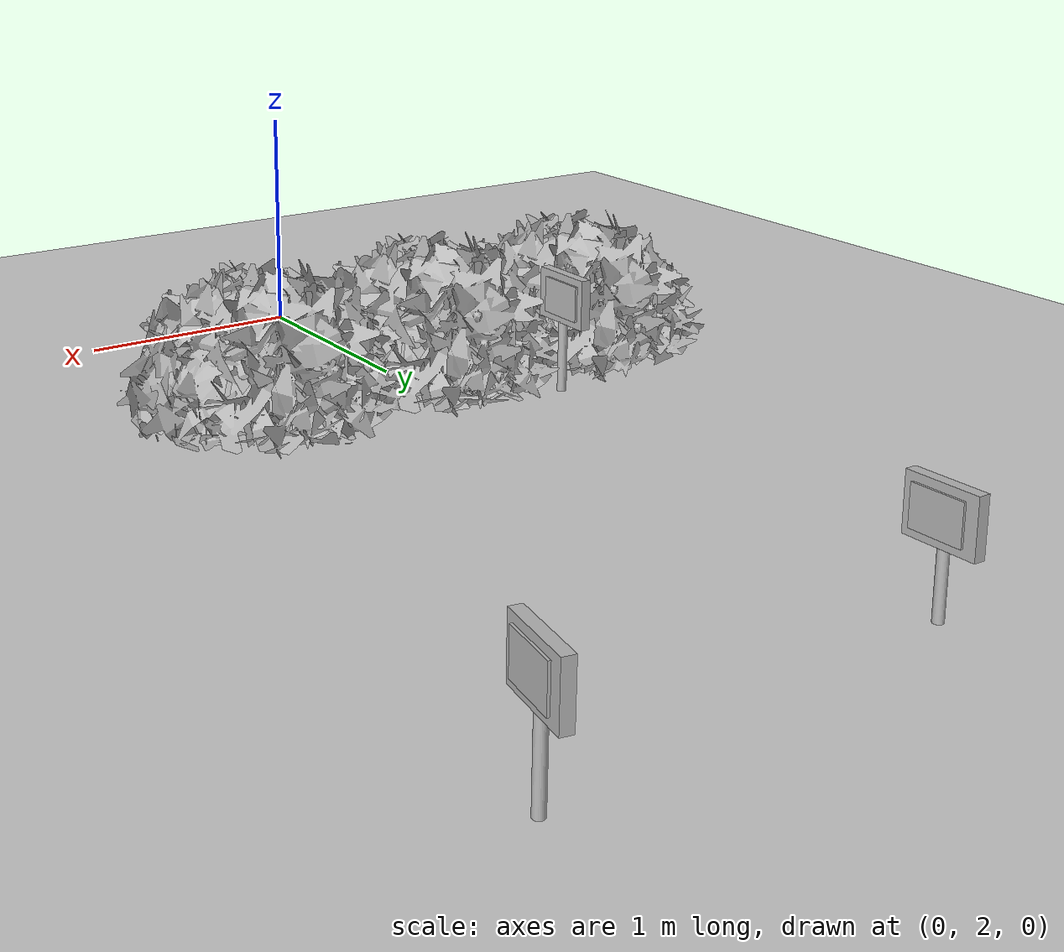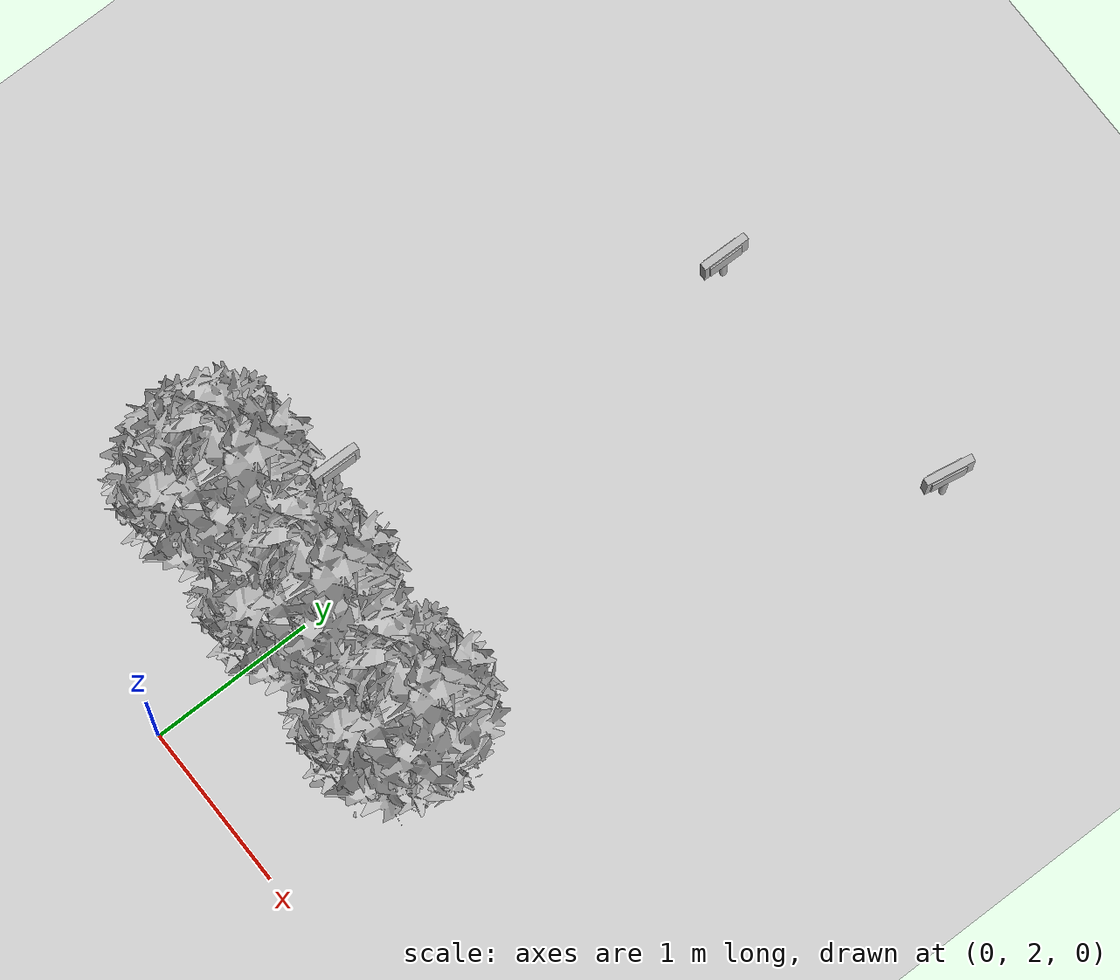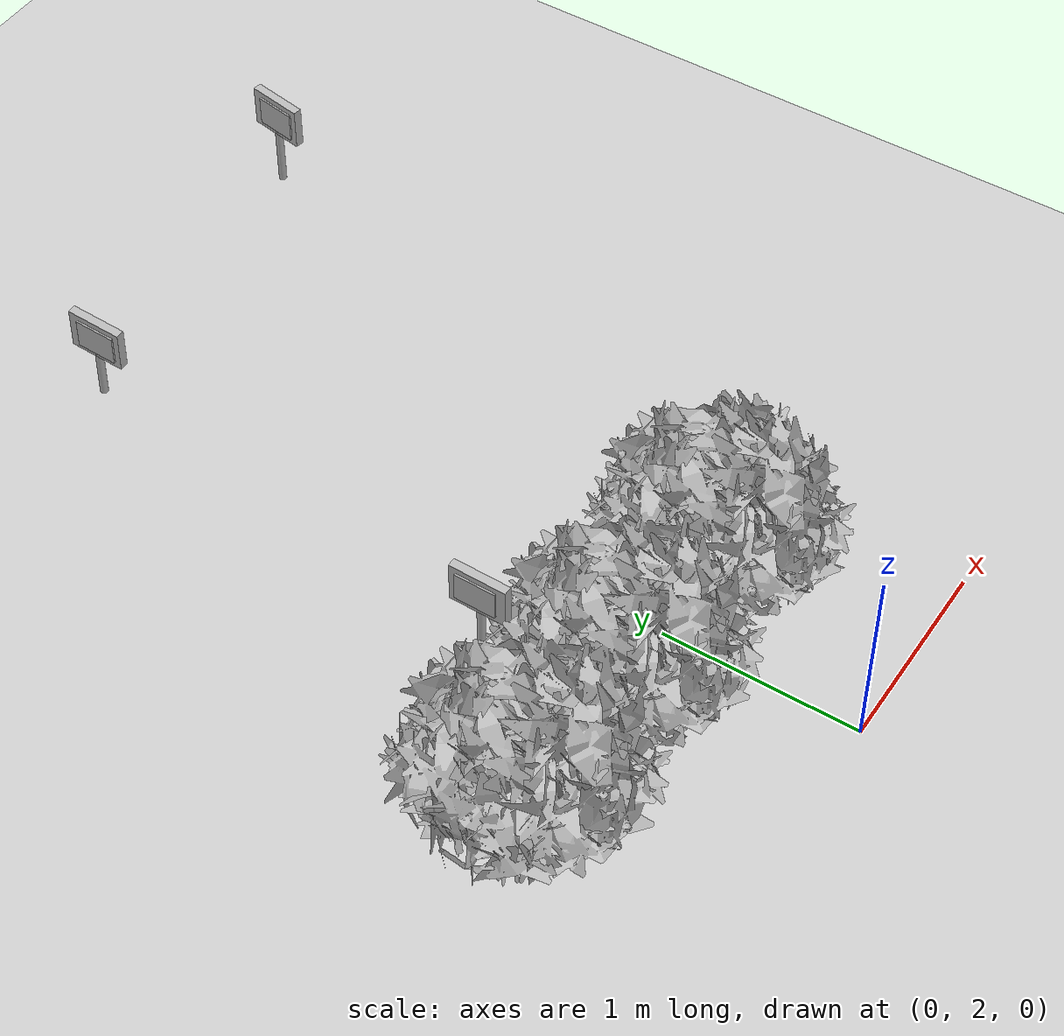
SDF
<sdf version="1.7">
 <world name="default">
  <model name="ground_plane">
   <static>1</static>
   <link name="link">
    <collision name="collision">
     <geometry><plane><normal>0 0 1</normal><size>100 100</size></plane></geometry>
     <surface>
      <contact><collide_bitmask>65535</collide_bitmask></contact>
      <friction><ode><mu>100</mu><mu2>50</mu2></ode></friction>
     </surface>
    </collision>
    <visual name="visual">
     <cast_shadows>0</cast_shadows>
     <geometry><plane><normal>0 0 1</normal><size>100 100</size></plane></geometry>
     <material>
      <script><uri>file://media/materials/scripts/gazebo.material</uri><name>Gazebo/Grey</name></script>
     </material>
    </visual>
   </link>
  </model>
  <model name="abbfre_5">
   <link name="link_0">
    <inertial>
     <mass>1</mass>
     <inertia>
      <ixx>0.166667</ixx>
      <ixy>0</ixy>
      <ixz>0</ixz>
      <iyy>0.166667</iyy>
      <iyz>0</iyz>
      <izz>0.166667</izz>
     </inertia>
    </inertial>
    <pose>0 0 -0 1.60917 -0 0</pose>
    <visual name="visual">
     <geometry><mesh><uri>model://abbfre/meshes/arbufres.obj</uri><scale>1 1 1</scale></mesh></geometry>
    </visual>
    <collision name="collision">
     <geometry><mesh><uri>model://abbfre/meshes/arbufres.obj</uri><scale>1 1 1</scale></mesh></geometry>
     <surface>
      <friction>
       <ode><mu>1</mu><mu2>1</mu2><fdir1>0 0 0</fdir1><slip1>0</slip1><slip2>0</slip2></ode>
       <torsional>
        <coefficient>1</coefficient>
        <patch_radius>0</patch_radius>
        <surface_radius>0</surface_radius>
        <use_patch_radius>1</use_patch_radius>
        <ode><slip>0</slip></ode>
       </torsional>
      </friction>
      <bounce><restitution_coefficient>0</restitution_coefficient><threshold>1e+06</threshold></bounce>
      <contact>
       <collide_without_contact>0</collide_without_contact>
       <collide_without_contact_bitmask>1</collide_without_contact_bitmask>
       <collide_bitmask>1</collide_bitmask>
       <ode>
        <soft_cfm>0</soft_cfm>
        <soft_erp>0.2</soft_erp>
        <kp>1e+13</kp>
        <kd>1</kd>
        <max_vel>0.01</max_vel>
        <min_depth>0</min_depth>
       </ode>
       <bullet>
        <split_impulse>1</split_impulse>
        <split_impulse_penetration_threshold>-0.01</split_impulse_penetration_threshold>
        <soft_cfm>0</soft_cfm>
        <soft_erp>0.2</soft_erp>
        <kp>1e+13</kp>
        <kd>1</kd>
       </bullet>
      </contact>
     </surface>
    </collision>
   </link>
   <static>1</static>
   <pose>-0.145619 3.21888 0 0 -0 0</pose>
  </model>
  <model name="letrero_riego_II_6">
   <link name="link_0">
    <inertial>
     <mass>0.0543151</mass>
     <inertia>
      <ixx>4.90351e-06</ixx>
      <ixy>0</ixy>
      <ixz>0</ixz>
      <iyy>4.90351e-06</iyy>
      <iyz>0</iyz>
      <izz>1.12837e-07</izz>
     </inertia>
    </inertial>
    <pose>0.002515 0.005109 0.153562 0 -0 0</pose>
    <visual name="visual">
     <geometry><cylinder><radius>0.0203836</radius><length>0.327243</length></cylinder></geometry>
     <material>
      <lighting>1</lighting>
      <script>
       <uri>model://letrero_riego_II/madera/scripts</uri>
       <uri>model://letrero_riego_II/madera/textures</uri>
       <name>textur/madera</name>
      </script>
      <shader type="pixel"/>
      <emissive>0 0 0 1</emissive>
     </material>
    </visual>
    <collision name="collision">
     <geometry><cylinder><radius>0.020384</radius><length>0.327243</length></cylinder></geometry>
     <surface>
      <friction>
       <ode><mu>1</mu><mu2>1</mu2><fdir1>0 0 0</fdir1><slip1>0</slip1><slip2>0</slip2></ode>
       <torsional>
        <coefficient>1</coefficient>
        <patch_radius>0</patch_radius>
        <surface_radius>0</surface_radius>
        <use_patch_radius>1</use_patch_radius>
        <ode><slip>0</slip></ode>
       </torsional>
      </friction>
      <bounce><restitution_coefficient>0</restitution_coefficient><threshold>1e+06</threshold></bounce>
      <contact>
       <collide_without_contact>0</collide_without_contact>
       <collide_without_contact_bitmask>1</collide_without_contact_bitmask>
       <collide_bitmask>1</collide_bitmask>
       <ode>
        <soft_cfm>0</soft_cfm>
        <soft_erp>0.2</soft_erp>
        <kp>1e+13</kp>
        <kd>1</kd>
        <max_vel>0.01</max_vel>
        <min_depth>0</min_depth>
       </ode>
       <bullet>
        <split_impulse>1</split_impulse>
        <split_impulse_penetration_threshold>-0.01</split_impulse_penetration_threshold>
        <soft_cfm>0</soft_cfm>
        <soft_erp>0.2</soft_erp>
        <kp>1e+13</kp>
        <kd>1</kd>
       </bullet>
      </contact>
     </surface>
    </collision>
   </link>
   <link name="link_1">
    <inertial>
     <mass>0.00299633</mass>
     <inertia>
      <ixx>1.27855e-05</ixx>
      <ixy>0</ixy>
      <ixz>0</ixz>
      <iyy>3.42923e-05</iyy>
      <iyz>0</iyz>
      <izz>2.25402e-05</izz>
     </inertia>
    </inertial>
    <pose>-0.001542 0.002452 0.422031 0 -0 0</pose>
    <visual name="visual">
     <geometry><box><size>0.296988 0.04549 0.221665</size></box></geometry>
     <material>
      <lighting>1</lighting>
      <script>
       <uri>model://letrero_riego_II/madera/scripts</uri>
       <uri>model://letrero_riego_II/madera/textures</uri>
       <name>textur/madera</name>
      </script>
      <shader type="pixel"/>
      <emissive>0 0 0 1</emissive>
     </material>
    </visual>
    <collision name="collision">
     <geometry><box><size>0.296988 0.04549 0.221665</size></box></geometry>
     <surface>
      <friction>
       <ode><mu>1</mu><mu2>1</mu2><fdir1>0 0 0</fdir1><slip1>0</slip1><slip2>0</slip2></ode>
       <torsional>
        <coefficient>1</coefficient>
        <patch_radius>0</patch_radius>
        <surface_radius>0</surface_radius>
        <use_patch_radius>1</use_patch_radius>
        <ode><slip>0</slip></ode>
       </torsional>
      </friction>
      <bounce><restitution_coefficient>0</restitution_coefficient><threshold>1e+06</threshold></bounce>
      <contact>
       <collide_without_contact>0</collide_without_contact>
       <collide_without_contact_bitmask>1</collide_without_contact_bitmask>
       <collide_bitmask>1</collide_bitmask>
       <ode>
        <soft_cfm>0</soft_cfm>
        <soft_erp>0.2</soft_erp>
        <kp>1e+13</kp>
        <kd>1</kd>
        <max_vel>0.01</max_vel>
        <min_depth>0</min_depth>
       </ode>
       <bullet>
        <split_impulse>1</split_impulse>
        <split_impulse_penetration_threshold>-0.01</split_impulse_penetration_threshold>
        <soft_cfm>0</soft_cfm>
        <soft_erp>0.2</soft_erp>
        <kp>1e+13</kp>
        <kd>1</kd>
       </bullet>
      </contact>
     </surface>
    </collision>
   </link>
   <link name="link_2">
    <inertial>
     <mass>0.00173577</mass>
     <inertia>
      <ixx>4.23206e-06</ixx>
      <ixy>0</ixy>
      <ixz>0</ixz>
      <iyy>1.03921e-05</iyy>
      <iyz>0</iyz>
      <izz>7.37287e-06</izz>
     </inertia>
    </inertial>
    <pose>-0.010225 0.002657 0.421501 0 -0 0</pose>
    <visual name="visual">
     <geometry><box><size>0.216284 0.064749 0.15832</size></box></geometry>
     <material>
      <lighting>1</lighting>
      <script>
       <uri>model://letrero_riego_II/materials/scripts</uri>
       <uri>model://letrero_riego_II/materials/textures</uri>
       <name>textur/sisrie</name>
      </script>
      <shader type="pixel"/>
      <emissive>0 0 0 1</emissive>
     </material>
    </visual>
    <collision name="collision">
     <geometry><box><size>0.216284 0.064749 0.15832</size></box></geometry>
     <surface>
      <friction>
       <ode><mu>1</mu><mu2>1</mu2><fdir1>0 0 0</fdir1><slip1>0</slip1><slip2>0</slip2></ode>
       <torsional>
        <coefficient>1</coefficient>
        <patch_radius>0</patch_radius>
        <surface_radius>0</surface_radius>
        <use_patch_radius>1</use_patch_radius>
        <ode><slip>0</slip></ode>
       </torsional>
      </friction>
      <bounce><restitution_coefficient>0</restitution_coefficient><threshold>1e+06</threshold></bounce>
      <contact>
       <collide_without_contact>0</collide_without_contact>
       <collide_without_contact_bitmask>1</collide_without_contact_bitmask>
       <collide_bitmask>1</collide_bitmask>
       <ode>
        <soft_cfm>0</soft_cfm>
        <soft_erp>0.2</soft_erp>
        <kp>1e+13</kp>
        <kd>1</kd>
        <max_vel>0.01</max_vel>
        <min_depth>0</min_depth>
       </ode>
       <bullet>
        <split_impulse>1</split_impulse>
        <split_impulse_penetration_threshold>-0.01</split_impulse_penetration_threshold>
        <soft_cfm>0</soft_cfm>
        <soft_erp>0.2</soft_erp>
        <kp>1e+13</kp>
        <kd>1</kd>
       </bullet>
      </contact>
     </surface>
    </collision>
   </link>
   <joint name="link_0_JOINT_1" type="fixed">
    <parent>link_0</parent>
    <child>link_1</child>
    <physics>
     <ode><limit><cfm>0</cfm><erp>0.2</erp></limit><suspension><cfm>0</cfm><erp>0.2</erp></suspension></ode>
    </physics>
   </joint>
   <joint name="link_0_JOINT_2" type="fixed">
    <parent>link_0</parent>
    <child>link_2</child>
    <physics>
     <ode><limit><cfm>0</cfm><erp>0.2</erp></limit><suspension><cfm>0</cfm><erp>0.2</erp></suspension></ode>
    </physics>
   </joint>
   <static>1</static>
   <pose>1.546 6.24181 0 0 -0 1.39874</pose>
  </model>
  <model name="letrero_chocho_5">
   <link name="link_0">
    <inertial>
     <mass>0.0543151</mass>
     <inertia>
      <ixx>4.90351e-06</ixx>
      <ixy>0</ixy>
      <ixz>0</ixz>
      <iyy>4.90351e-06</iyy>
      <iyz>0</iyz>
      <izz>1.12837e-07</izz>
     </inertia>
    </inertial>
    <pose>0.002515 0.005109 0.153562 0 -0 0</pose>
    <visual name="visual">
     <geometry><cylinder><radius>0.0203836</radius><length>0.327243</length></cylinder></geometry>
     <material>
      <lighting>1</lighting>
      <script>
       <uri>model://letrero_chocho/madera/scripts</uri>
       <uri>model://letrero_chocho/madera/textures</uri>
       <name>textur/madera</name>
      </script>
      <shader type="pixel"/>
      <emissive>0 0 0 1</emissive>
     </material>
    </visual>
    <collision name="collision">
     <geometry><cylinder><radius>0.020384</radius><length>0.327243</length></cylinder></geometry>
     <surface>
      <friction>
       <ode><mu>1</mu><mu2>1</mu2><fdir1>0 0 0</fdir1><slip1>0</slip1><slip2>0</slip2></ode>
       <torsional>
        <coefficient>1</coefficient>
        <patch_radius>0</patch_radius>
        <surface_radius>0</surface_radius>
        <use_patch_radius>1</use_patch_radius>
        <ode><slip>0</slip></ode>
       </torsional>
      </friction>
      <bounce><restitution_coefficient>0</restitution_coefficient><threshold>1e+06</threshold></bounce>
      <contact>
       <collide_without_contact>0</collide_without_contact>
       <collide_without_contact_bitmask>1</collide_without_contact_bitmask>
       <collide_bitmask>1</collide_bitmask>
       <ode>
        <soft_cfm>0</soft_cfm>
        <soft_erp>0.2</soft_erp>
        <kp>1e+13</kp>
        <kd>1</kd>
        <max_vel>0.01</max_vel>
        <min_depth>0</min_depth>
       </ode>
       <bullet>
        <split_impulse>1</split_impulse>
        <split_impulse_penetration_threshold>-0.01</split_impulse_penetration_threshold>
        <soft_cfm>0</soft_cfm>
        <soft_erp>0.2</soft_erp>
        <kp>1e+13</kp>
        <kd>1</kd>
       </bullet>
      </contact>
     </surface>
    </collision>
   </link>
   <link name="link_1">
    <inertial>
     <mass>0.00299633</mass>
     <inertia>
      <ixx>1.27855e-05</ixx>
      <ixy>0</ixy>
      <ixz>0</ixz>
      <iyy>3.42923e-05</iyy>
      <iyz>0</iyz>
      <izz>2.25402e-05</izz>
     </inertia>
    </inertial>
    <pose>-0.001542 0.002452 0.422031 0 -0 0</pose>
    <visual name="visual">
     <geometry><box><size>0.296988 0.04549 0.221665</size></box></geometry>
     <material>
      <lighting>1</lighting>
      <script>
       <uri>model://letrero_chocho/madera/scripts</uri>
       <uri>model://letrero_chocho/madera/textures</uri>
       <name>textur/madera</name>
      </script>
      <shader type="pixel"/>
      <emissive>0 0 0 1</emissive>
     </material>
    </visual>
    <collision name="collision">
     <geometry><box><size>0.296988 0.04549 0.221665</size></box></geometry>
     <surface>
      <friction>
       <ode><mu>1</mu><mu2>1</mu2><fdir1>0 0 0</fdir1><slip1>0</slip1><slip2>0</slip2></ode>
       <torsional>
        <coefficient>1</coefficient>
        <patch_radius>0</patch_radius>
        <surface_radius>0</surface_radius>
        <use_patch_radius>1</use_patch_radius>
        <ode><slip>0</slip></ode>
       </torsional>
      </friction>
      <bounce><restitution_coefficient>0</restitution_coefficient><threshold>1e+06</threshold></bounce>
      <contact>
       <collide_without_contact>0</collide_without_contact>
       <collide_without_contact_bitmask>1</collide_without_contact_bitmask>
       <collide_bitmask>1</collide_bitmask>
       <ode>
        <soft_cfm>0</soft_cfm>
        <soft_erp>0.2</soft_erp>
        <kp>1e+13</kp>
        <kd>1</kd>
        <max_vel>0.01</max_vel>
        <min_depth>0</min_depth>
       </ode>
       <bullet>
        <split_impulse>1</split_impulse>
        <split_impulse_penetration_threshold>-0.01</split_impulse_penetration_threshold>
        <soft_cfm>0</soft_cfm>
        <soft_erp>0.2</soft_erp>
        <kp>1e+13</kp>
        <kd>1</kd>
       </bullet>
      </contact>
     </surface>
    </collision>
   </link>
   <link name="link_2">
    <inertial>
     <mass>0.00173577</mass>
     <inertia>
      <ixx>4.23206e-06</ixx>
      <ixy>0</ixy>
      <ixz>0</ixz>
      <iyy>1.03921e-05</iyy>
      <iyz>0</iyz>
      <izz>7.37287e-06</izz>
     </inertia>
    </inertial>
    <pose>-0.010225 0.002657 0.421501 0 -0 0</pose>
    <visual name="visual">
     <geometry><box><size>0.216284 0.064749 0.15832</size></box></geometry>
     <material>
      <lighting>1</lighting>
      <script>
       <uri>model://letrero_chocho/materials/scripts</uri>
       <uri>model://letrero_chocho/materials/textures</uri>
       <name>textur/cho</name>
      </script>
      <shader type="pixel"/>
      <emissive>0 0 0 1</emissive>
     </material>
    </visual>
    <collision name="collision">
     <geometry><box><size>0.216284 0.064749 0.15832</size></box></geometry>
     <surface>
      <friction>
       <ode><mu>1</mu><mu2>1</mu2><fdir1>0 0 0</fdir1><slip1>0</slip1><slip2>0</slip2></ode>
       <torsional>
        <coefficient>1</coefficient>
        <patch_radius>0</patch_radius>
        <surface_radius>0</surface_radius>
        <use_patch_radius>1</use_patch_radius>
        <ode><slip>0</slip></ode>
       </torsional>
      </friction>
      <bounce><restitution_coefficient>0</restitution_coefficient><threshold>1e+06</threshold></bounce>
      <contact>
       <collide_without_contact>0</collide_without_contact>
       <collide_without_contact_bitmask>1</collide_without_contact_bitmask>
       <collide_bitmask>1</collide_bitmask>
       <ode>
        <soft_cfm>0</soft_cfm>
        <soft_erp>0.2</soft_erp>
        <kp>1e+13</kp>
        <kd>1</kd>
        <max_vel>0.01</max_vel>
        <min_depth>0</min_depth>
       </ode>
       <bullet>
        <split_impulse>1</split_impulse>
        <split_impulse_penetration_threshold>-0.01</split_impulse_penetration_threshold>
        <soft_cfm>0</soft_cfm>
        <soft_erp>0.2</soft_erp>
        <kp>1e+13</kp>
        <kd>1</kd>
       </bullet>
      </contact>
     </surface>
    </collision>
   </link>
   <joint name="link_0_JOINT_1" type="fixed">
    <parent>link_0</parent>
    <child>link_1</child>
    <physics>
     <ode><limit><cfm>0</cfm><erp>0.2</erp></limit><suspension><cfm>0</cfm><erp>0.2</erp></suspension></ode>
    </physics>
   </joint>
   <joint name="link_0_JOINT_2" type="fixed">
    <parent>link_0</parent>
    <child>link_2</child>
    <physics>
     <ode><limit><cfm>0</cfm><erp>0.2</erp></limit><suspension><cfm>0</cfm><erp>0.2</erp></suspension></ode>
    </physics>
   </joint>
   <static>1</static>
   <pose>-0.173827 6.0597 -0.055651 0.000459 -0.025716 1.55293</pose>
  </model>
  <model name="letrero_riego_3">
   <link name="link_0">
    <inertial>
     <mass>0.0543151</mass>
     <inertia>
      <ixx>4.90351e-06</ixx>
      <ixy>0</ixy>
      <ixz>0</ixz>
      <iyy>4.90351e-06</iyy>
      <iyz>0</iyz>
      <izz>1.12837e-07</izz>
     </inertia>
    </inertial>
    <pose>0.002515 0.005109 0.153562 0 -0 0</pose>
    <visual name="visual">
     <geometry><cylinder><radius>0.0203836</radius><length>0.327243</length></cylinder></geometry>
     <material>
      <lighting>1</lighting>
      <script>
       <uri>model://letrero_riego/madera/scripts</uri>
       <uri>model://letrero_riego/madera/textures</uri>
       <name>textur/madera</name>
      </script>
      <shader type="pixel"/>
      <emissive>0 0 0 1</emissive>
     </material>
    </visual>
    <collision name="collision">
     <geometry><cylinder><radius>0.020384</radius><length>0.327243</length></cylinder></geometry>
     <surface>
      <friction>
       <ode><mu>1</mu><mu2>1</mu2><fdir1>0 0 0</fdir1><slip1>0</slip1><slip2>0</slip2></ode>
       <torsional>
        <coefficient>1</coefficient>
        <patch_radius>0</patch_radius>
        <surface_radius>0</surface_radius>
        <use_patch_radius>1</use_patch_radius>
        <ode><slip>0</slip></ode>
       </torsional>
      </friction>
      <bounce><restitution_coefficient>0</restitution_coefficient><threshold>1e+06</threshold></bounce>
      <contact>
       <collide_without_contact>0</collide_without_contact>
       <collide_without_contact_bitmask>1</collide_without_contact_bitmask>
       <collide_bitmask>1</collide_bitmask>
       <ode>
        <soft_cfm>0</soft_cfm>
        <soft_erp>0.2</soft_erp>
        <kp>1e+13</kp>
        <kd>1</kd>
        <max_vel>0.01</max_vel>
        <min_depth>0</min_depth>
       </ode>
       <bullet>
        <split_impulse>1</split_impulse>
        <split_impulse_penetration_threshold>-0.01</split_impulse_penetration_threshold>
        <soft_cfm>0</soft_cfm>
        <soft_erp>0.2</soft_erp>
        <kp>1e+13</kp>
        <kd>1</kd>
       </bullet>
      </contact>
     </surface>
    </collision>
   </link>
   <link name="link_1">
    <inertial>
     <mass>0.00299633</mass>
     <inertia>
      <ixx>1.27855e-05</ixx>
      <ixy>0</ixy>
      <ixz>0</ixz>
      <iyy>3.42923e-05</iyy>
      <iyz>0</iyz>
      <izz>2.25402e-05</izz>
     </inertia>
    </inertial>
    <pose>-0.001542 0.002452 0.422031 0 -0 0</pose>
    <visual name="visual">
     <geometry><box><size>0.296988 0.04549 0.221665</size></box></geometry>
     <material>
      <lighting>1</lighting>
      <script>
       <uri>model://letrero_riego/madera/scripts</uri>
       <uri>model://letrero_riego/madera/textures</uri>
       <name>textur/madera</name>
      </script>
      <shader type="pixel"/>
      <emissive>0 0 0 1</emissive>
     </material>
    </visual>
    <collision name="collision">
     <geometry><box><size>0.296988 0.04549 0.221665</size></box></geometry>
     <surface>
      <friction>
       <ode><mu>1</mu><mu2>1</mu2><fdir1>0 0 0</fdir1><slip1>0</slip1><slip2>0</slip2></ode>
       <torsional>
        <coefficient>1</coefficient>
        <patch_radius>0</patch_radius>
        <surface_radius>0</surface_radius>
        <use_patch_radius>1</use_patch_radius>
        <ode><slip>0</slip></ode>
       </torsional>
      </friction>
      <bounce><restitution_coefficient>0</restitution_coefficient><threshold>1e+06</threshold></bounce>
      <contact>
       <collide_without_contact>0</collide_without_contact>
       <collide_without_contact_bitmask>1</collide_without_contact_bitmask>
       <collide_bitmask>1</collide_bitmask>
       <ode>
        <soft_cfm>0</soft_cfm>
        <soft_erp>0.2</soft_erp>
        <kp>1e+13</kp>
        <kd>1</kd>
        <max_vel>0.01</max_vel>
        <min_depth>0</min_depth>
       </ode>
       <bullet>
        <split_impulse>1</split_impulse>
        <split_impulse_penetration_threshold>-0.01</split_impulse_penetration_threshold>
        <soft_cfm>0</soft_cfm>
        <soft_erp>0.2</soft_erp>
        <kp>1e+13</kp>
        <kd>1</kd>
       </bullet>
      </contact>
     </surface>
    </collision>
   </link>
   <link name="link_2">
    <inertial>
     <mass>0.00173577</mass>
     <inertia>
      <ixx>4.23206e-06</ixx>
      <ixy>0</ixy>
      <ixz>0</ixz>
      <iyy>1.03921e-05</iyy>
      <iyz>0</iyz>
      <izz>7.37287e-06</izz>
     </inertia>
    </inertial>
    <pose>-0.010225 0.002657 0.421501 0 -0 0</pose>
    <visual name="visual">
     <geometry><box><size>0.216284 0.064749 0.15832</size></box></geometry>
     <material>
      <lighting>1</lighting>
      <script>
       <uri>model://letrero_riego/materials/scripts</uri>
       <uri>model://letrero_riego/materials/textures</uri>
       <name>textur/riego</name>
      </script>
      <shader type="pixel"/>
      <emissive>0 0 0 1</emissive>
     </material>
    </visual>
    <collision name="collision">
     <geometry><box><size>0.216284 0.064749 0.15832</size></box></geometry>
     <surface>
      <friction>
       <ode><mu>1</mu><mu2>1</mu2><fdir1>0 0 0</fdir1><slip1>0</slip1><slip2>0</slip2></ode>
       <torsional>
        <coefficient>1</coefficient>
        <patch_radius>0</patch_radius>
        <surface_radius>0</surface_radius>
        <use_patch_radius>1</use_patch_radius>
        <ode><slip>0</slip></ode>
       </torsional>
      </friction>
      <bounce><restitution_coefficient>0</restitution_coefficient><threshold>1e+06</threshold></bounce>
      <contact>
       <collide_without_contact>0</collide_without_contact>
       <collide_without_contact_bitmask>1</collide_without_contact_bitmask>
       <collide_bitmask>1</collide_bitmask>
       <ode>
        <soft_cfm>0</soft_cfm>
        <soft_erp>0.2</soft_erp>
        <kp>1e+13</kp>
        <kd>1</kd>
        <max_vel>0.01</max_vel>
        <min_depth>0</min_depth>
       </ode>
       <bullet>
        <split_impulse>1</split_impulse>
        <split_impulse_penetration_threshold>-0.01</split_impulse_penetration_threshold>
        <soft_cfm>0</soft_cfm>
        <soft_erp>0.2</soft_erp>
        <kp>1e+13</kp>
        <kd>1</kd>
       </bullet>
      </contact>
     </surface>
    </collision>
   </link>
   <joint name="link_0_JOINT_1" type="fixed">
    <parent>link_0</parent>
    <child>link_1</child>
    <physics>
     <ode><limit><cfm>0</cfm><erp>0.2</erp></limit><suspension><cfm>0</cfm><erp>0.2</erp></suspension></ode>
    </physics>
   </joint>
   <joint name="link_0_JOINT_2" type="fixed">
    <parent>link_0</parent>
    <child>link_2</child>
    <physics>
     <ode><limit><cfm>0</cfm><erp>0.2</erp></limit><suspension><cfm>0</cfm><erp>0.2</erp></suspension></ode>
    </physics>
   </joint>
   <static>1</static>
   <pose>-0.534484 3.62946 0 0 0 -1.58399</pose>
  </model>
 </world>
</sdf>
